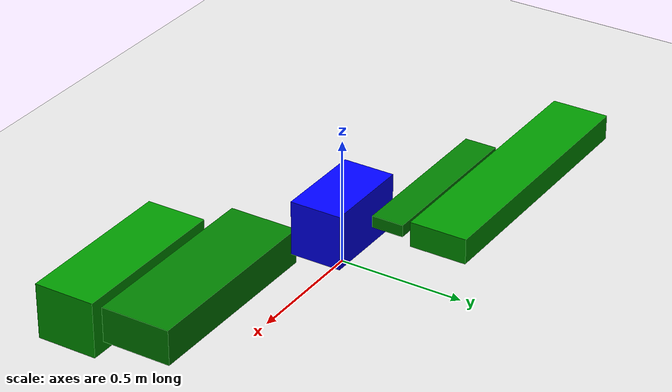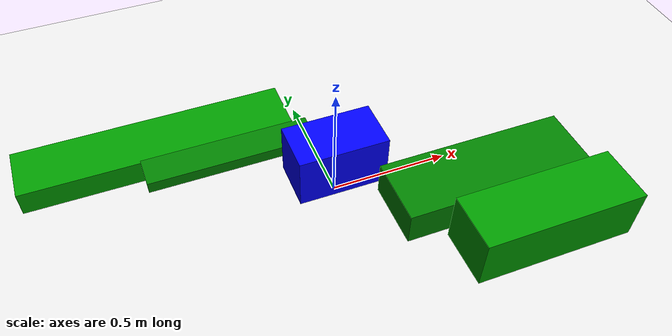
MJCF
<mujoco>
    <worldbody>
    <light diffuse=".5 .5 .5" pos="0 0 3" dir="0 0 -1"/>
    <geom type="plane" size="5 5 0.1" rgba=".9 0.9 0.9 1"/>
    <body name="main body" pos="0 0 .2">
        <joint type="free"/>
        <geom type="box" size="0.1823618432185498 0.10347852472478945 0.10960618824937188" rgba="0 0 1 1" mass="1"/>
        <site name="marker" pos="0 0 0" size="0.05"/>
        <site name="robot_center" pos="0 0 0" size="0.01"/>
        <body name="left_leg1" pos="-0.38 0.16803071267335523 -0.017958062020742512">
            <joint name="left_leg1_joint" type="hinge" axis="0 1 0" pos="0 0 0"/>
            <geom type="box" size="0.3416734528961997 0.06455218794856579 0.024025585299729122" rgba="0 .5 0 1" mass="1"/>
            <body name="left_leg2" pos="-0.2637532840594213 0.1802081567358777 -0.04">
                <joint name="left_leg2_joint" type="hinge" axis="0 1 0" pos="0 0 0"/>
                <geom type="box" size="0.5516330174695906 0.1156559687873119 0.05111184958501502" rgba="0 .6 0 1" mass="1"/>
            </body>
        </body>
        <body name="right_leg1" pos="0.5469934657171783 -0.24333416650117712 -0.09108850334772052">
            <joint name="right_leg1_joint" type="hinge" axis="0 1 0" pos="0 0 0"/>
            <geom type="box" size="0.3967219991209611 0.13985564177638768 0.07069241702378894" rgba="0 .5 0 1" mass="1"/>
            <body name="right_leg2" pos="0.11462690925236625 -0.26168403395629725 -0.011825825775616684">
                <joint name="right_leg2_joint" type="hinge" axis="0 1 0" pos="0 0 0"/>
                <geom type="box" size="0.33370203113681823 0.12182839217990957 0.12327901580387958" rgba="0 .6 0 1" mass="1"/>
            </body>
        </body>
    </body>
    </worldbody>
    <sensor>
        <framepos objtype="site" objname="marker"/>
        <velocimeter name="robot_velocity" site="robot_center"/>
    </sensor>
    <actuator>
        <position joint="left_leg1_joint" kp="10"/>
        <position joint="left_leg2_joint" kp="10"/>
        <position joint="right_leg1_joint" kp="10"/>
        <position joint="right_leg2_joint" kp="10"/>
    </actuator>
</mujoco>
